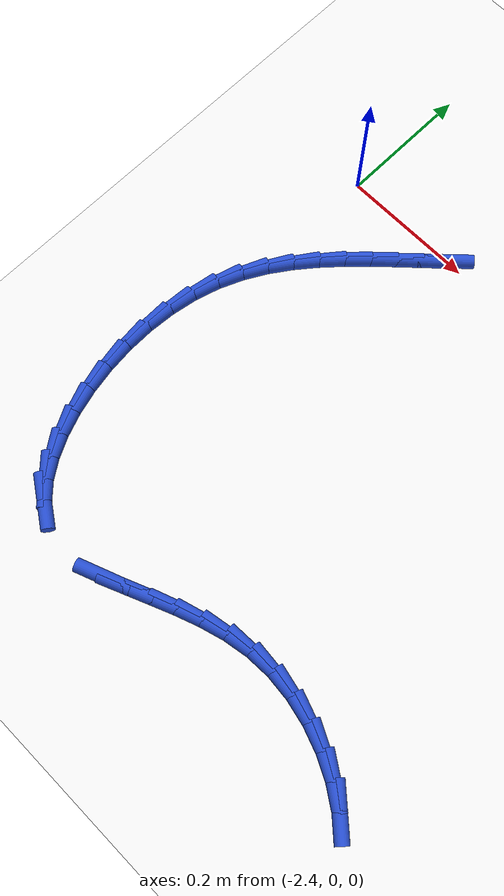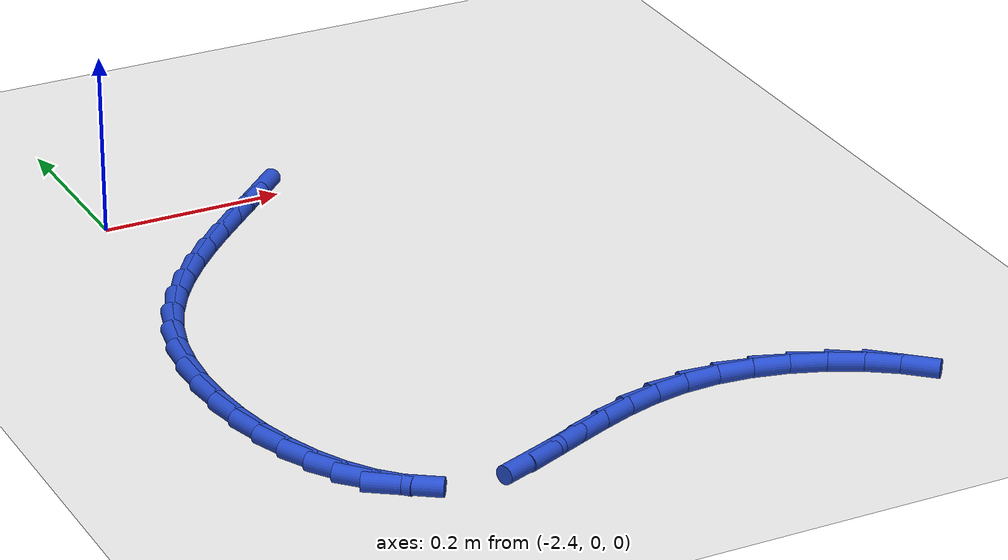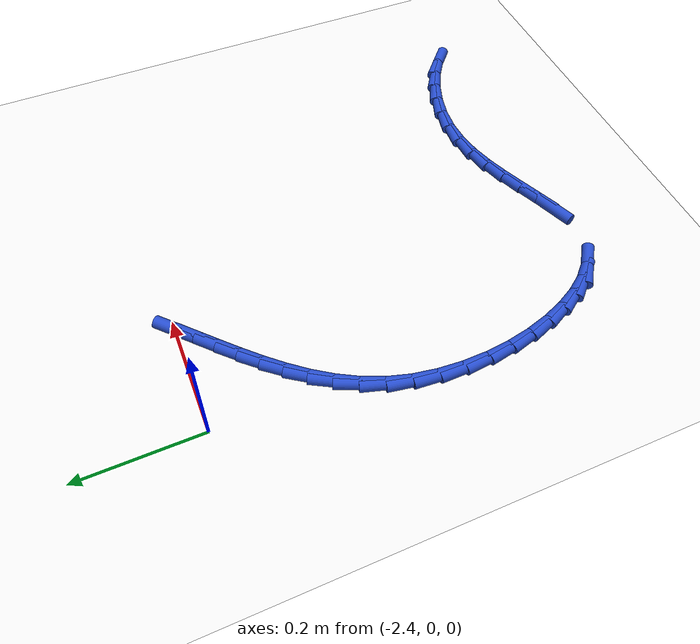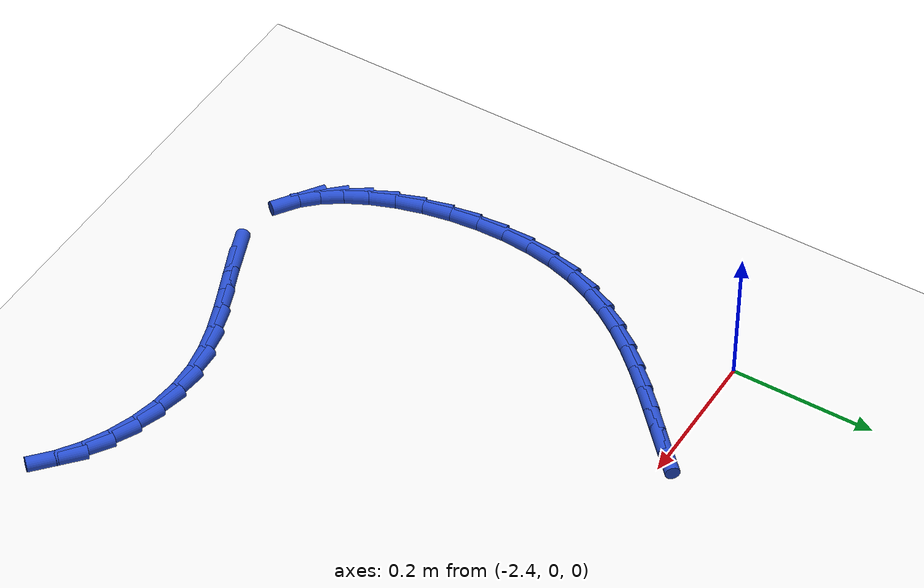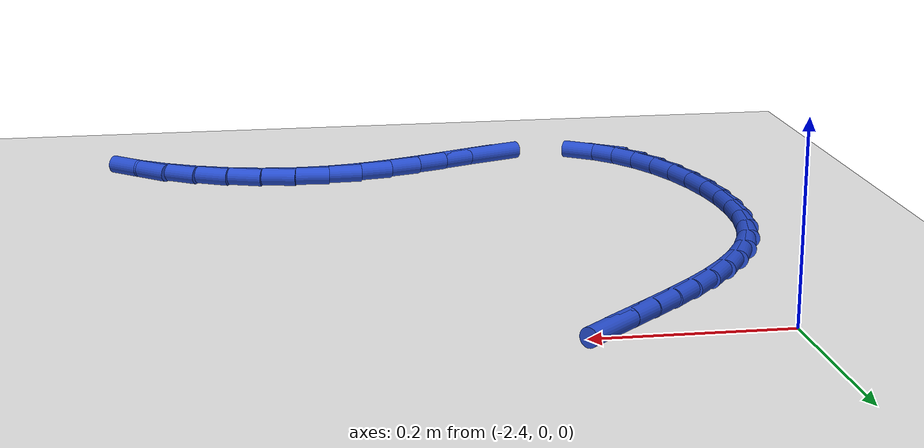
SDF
<sdf version="1.6">
 <world name="default">
  <model name="ground_plane">
   <static>1</static>
   <link name="link">
    <collision name="collision">
     <geometry><plane><normal>0 0 1</normal><size>100 100</size></plane></geometry>
     <surface><friction><ode><mu>100</mu><mu2>50</mu2></ode></friction></surface>
    </collision>
    <visual name="visual">
     <cast_shadows>0</cast_shadows>
     <geometry><plane><normal>0 0 1</normal><size>100 100</size></plane></geometry>
     <material>
      <script><uri>file://media/materials/scripts/gazebo.material</uri><name>Gazebo/WhiteGlow</name></script>
     </material>
    </visual>
   </link>
  </model>
  <model name="line">
   <link name="link_136">
    <pose>-2.224616573735574 -0.004468285898509745 0.01 0 1.57 0.7657718882771116</pose>
    <collision name="collision">
     <geometry><cylinder><radius>0.01</radius><length>0.08</length></cylinder></geometry>
    </collision>
    <visual name="visual">
     <material>
      <script><name>Gazebo/Blue</name><uri>file://media/materials/scripts/gazebo.material</uri></script>
     </material>
     <geometry><cylinder><radius>0.01</radius><length>0.08</length></cylinder></geometry>
    </visual>
   </link>
   <link name="link_137">
    <pose>-2.249879394273641 -0.02875844120913975 0.01 0 1.57 0.757967144704939</pose>
    <collision name="collision">
     <geometry><cylinder><radius>0.01</radius><length>0.08</length></cylinder></geometry>
    </collision>
    <visual name="visual">
     <material>
      <script><name>Gazebo/Blue</name><uri>file://media/materials/scripts/gazebo.material</uri></script>
     </material>
     <geometry><cylinder><radius>0.01</radius><length>0.08</length></cylinder></geometry>
    </visual>
   </link>
   <link name="link_138">
    <pose>-2.2759423455509067 -0.053429361538926 0.01 0 1.57 0.7670263152751041</pose>
    <collision name="collision">
     <geometry><cylinder><radius>0.01</radius><length>0.08</length></cylinder></geometry>
    </collision>
    <visual name="visual">
     <material>
      <script><name>Gazebo/Blue</name><uri>file://media/materials/scripts/gazebo.material</uri></script>
     </material>
     <geometry><cylinder><radius>0.01</radius><length>0.08</length></cylinder></geometry>
    </visual>
   </link>
   <link name="link_139">
    <pose>-2.302205493768837 -0.07874480900403454 0.01 0 1.57 0.7923157932198339</pose>
    <collision name="collision">
     <geometry><cylinder><radius>0.01</radius><length>0.08</length></cylinder></geometry>
    </collision>
    <visual name="visual">
     <material>
      <script><name>Gazebo/Blue</name><uri>file://media/materials/scripts/gazebo.material</uri></script>
     </material>
     <geometry><cylinder><radius>0.01</radius><length>0.08</length></cylinder></geometry>
    </visual>
   </link>
   <link name="link_140">
    <pose>-2.3280689051288976 -0.10496854572063352 0.01 0 1.57 0.8338117037802529</pose>
    <collision name="collision">
     <geometry><cylinder><radius>0.01</radius><length>0.08</length></cylinder></geometry>
    </collision>
    <visual name="visual">
     <material>
      <script><name>Gazebo/Blue</name><uri>file://media/materials/scripts/gazebo.material</uri></script>
     </material>
     <geometry><cylinder><radius>0.01</radius><length>0.08</length></cylinder></geometry>
    </visual>
   </link>
   <link name="link_141">
    <pose>-2.3529326458325555 -0.13236433380489135 0.01 0 1.57 0.8918639505430946</pose>
    <collision name="collision">
     <geometry><cylinder><radius>0.01</radius><length>0.08</length></cylinder></geometry>
    </collision>
    <visual name="visual">
     <material>
      <script><name>Gazebo/Blue</name><uri>file://media/materials/scripts/gazebo.material</uri></script>
     </material>
     <geometry><cylinder><radius>0.01</radius><length>0.08</length></cylinder></geometry>
    </visual>
   </link>
   <link name="link_142">
    <pose>-2.3761967820812755 -0.1611959353729738 0.01 0 1.57 0.9668558253836452</pose>
    <collision name="collision">
     <geometry><cylinder><radius>0.01</radius><length>0.08</length></cylinder></geometry>
    </collision>
    <visual name="visual">
     <material>
      <script><name>Gazebo/Blue</name><uri>file://media/materials/scripts/gazebo.material</uri></script>
     </material>
     <geometry><cylinder><radius>0.01</radius><length>0.08</length></cylinder></geometry>
    </visual>
   </link>
   <link name="link_143">
    <pose>-2.3972613800765252 -0.19172711254105015 0.01 0 1.57 1.058711731830014</pose>
    <collision name="collision">
     <geometry><cylinder><radius>0.01</radius><length>0.08</length></cylinder></geometry>
    </collision>
    <visual name="visual">
     <material>
      <script><name>Gazebo/Blue</name><uri>file://media/materials/scripts/gazebo.material</uri></script>
     </material>
     <geometry><cylinder><radius>0.01</radius><length>0.08</length></cylinder></geometry>
    </visual>
   </link>
   <link name="link_144">
    <pose>-2.4155265060197704 -0.224221627425286 0.01 0 1.57 1.1662688862633526</pose>
    <collision name="collision">
     <geometry><cylinder><radius>0.01</radius><length>0.08</length></cylinder></geometry>
    </collision>
    <visual name="visual">
     <material>
      <script><name>Gazebo/Blue</name><uri>file://media/materials/scripts/gazebo.material</uri></script>
     </material>
     <geometry><cylinder><radius>0.01</radius><length>0.08</length></cylinder></geometry>
    </visual>
   </link>
   <link name="link_145">
    <pose>-2.4303922261124766 -0.2589432421418509 0.01 0 1.57 1.2851183425668071</pose>
    <collision name="collision">
     <geometry><cylinder><radius>0.01</radius><length>0.08</length></cylinder></geometry>
    </collision>
    <visual name="visual">
     <material>
      <script><name>Gazebo/Blue</name><uri>file://media/materials/scripts/gazebo.material</uri></script>
     </material>
     <geometry><cylinder><radius>0.01</radius><length>0.08</length></cylinder></geometry>
    </visual>
   </link>
   <link name="link_146">
    <pose>-2.4413041919021583 -0.29609517485403386 0.01 0 1.57 1.397007992559037</pose>
    <collision name="collision">
     <geometry><cylinder><radius>0.01</radius><length>0.08</length></cylinder></geometry>
    </collision>
    <visual name="visual">
     <material>
      <script><name>Gazebo/Blue</name><uri>file://media/materials/scripts/gazebo.material</uri></script>
     </material>
     <geometry><cylinder><radius>0.01</radius><length>0.08</length></cylinder></geometry>
    </visual>
   </link>
   <link name="link_147">
    <pose>-2.448179075511036 -0.33525506006827915 0.01 0 1.57 1.4958299038583678</pose>
    <collision name="collision">
     <geometry><cylinder><radius>0.01</radius><length>0.08</length></cylinder></geometry>
    </collision>
    <visual name="visual">
     <material>
      <script><name>Gazebo/Blue</name><uri>file://media/materials/scripts/gazebo.material</uri></script>
     </material>
     <geometry><cylinder><radius>0.01</radius><length>0.08</length></cylinder></geometry>
    </visual>
   </link>
   <link name="link_148">
    <pose>-2.4512116148841923 -0.37563122053767417 0.01 0 1.57 -1.5558090678703074</pose>
    <collision name="collision">
     <geometry><cylinder><radius>0.01</radius><length>0.08</length></cylinder></geometry>
    </collision>
    <visual name="visual">
     <material>
      <script><name>Gazebo/Blue</name><uri>file://media/materials/scripts/gazebo.material</uri></script>
     </material>
     <geometry><cylinder><radius>0.01</radius><length>0.08</length></cylinder></geometry>
    </visual>
   </link>
   <link name="link_149">
    <pose>-2.450600149254381 -0.4164271959828267 0.01 0 1.57 -1.4707553933714161</pose>
    <collision name="collision">
     <geometry><cylinder><radius>0.01</radius><length>0.08</length></cylinder></geometry>
    </collision>
    <visual name="visual">
     <material>
      <script><name>Gazebo/Blue</name><uri>file://media/materials/scripts/gazebo.material</uri></script>
     </material>
     <geometry><cylinder><radius>0.01</radius><length>0.08</length></cylinder></geometry>
    </visual>
   </link>
   <link name="link_150">
    <pose>-2.446543017854353 -0.45684652612433924 0.01 0 1.57 -1.3867830574191868</pose>
    <collision name="collision">
     <geometry><cylinder><radius>0.01</radius><length>0.08</length></cylinder></geometry>
    </collision>
    <visual name="visual">
     <material>
      <script><name>Gazebo/Blue</name><uri>file://media/materials/scripts/gazebo.material</uri></script>
     </material>
     <geometry><cylinder><radius>0.01</radius><length>0.08</length></cylinder></geometry>
    </visual>
   </link>
   <link name="link_151">
    <pose>-2.439238559916862 -0.49609275068281833 0.01 0 1.57 -1.299878918457833</pose>
    <collision name="collision">
     <geometry><cylinder><radius>0.01</radius><length>0.08</length></cylinder></geometry>
    </collision>
    <visual name="visual">
     <material>
      <script><name>Gazebo/Blue</name><uri>file://media/materials/scripts/gazebo.material</uri></script>
     </material>
     <geometry><cylinder><radius>0.01</radius><length>0.08</length></cylinder></geometry>
    </visual>
   </link>
   <link name="link_152">
    <pose>-2.4288851146746584 -0.5333694093788699 0.01 0 1.57 -1.2053711252016053</pose>
    <collision name="collision">
     <geometry><cylinder><radius>0.01</radius><length>0.08</length></cylinder></geometry>
    </collision>
    <visual name="visual">
     <material>
      <script><name>Gazebo/Blue</name><uri>file://media/materials/scripts/gazebo.material</uri></script>
     </material>
     <geometry><cylinder><radius>0.01</radius><length>0.08</length></cylinder></geometry>
    </visual>
   </link>
   <link name="link_153">
    <pose>-2.4156810213604976 -0.5678800419330969 0.01 0 1.57 -1.097314543827557</pose>
    <collision name="collision">
     <geometry><cylinder><radius>0.01</radius><length>0.08</length></cylinder></geometry>
    </collision>
    <visual name="visual">
     <material>
      <script><name>Gazebo/Blue</name><uri>file://media/materials/scripts/gazebo.material</uri></script>
     </material>
     <geometry><cylinder><radius>0.01</radius><length>0.08</length></cylinder></geometry>
    </visual>
   </link>
   <link name="link_154">
    <pose>-2.3998246192071298 -0.5988281880661068 0.01 0 1.57 -0.9677356520368824</pose>
    <collision name="collision">
     <geometry><cylinder><radius>0.01</radius><length>0.08</length></cylinder></geometry>
    </collision>
    <visual name="visual">
     <material>
      <script><name>Gazebo/Blue</name><uri>file://media/materials/scripts/gazebo.material</uri></script>
     </material>
     <geometry><cylinder><radius>0.01</radius><length>0.08</length></cylinder></geometry>
    </visual>
   </link>
   <link name="link_155">
    <pose>-2.381514247447309 -0.6254173874985024 0.01 0 1.57 -0.8060569992295915</pose>
    <collision name="collision">
     <geometry><cylinder><radius>0.01</radius><length>0.08</length></cylinder></geometry>
    </collision>
    <visual name="visual">
     <material>
      <script><name>Gazebo/Blue</name><uri>file://media/materials/scripts/gazebo.material</uri></script>
     </material>
     <geometry><cylinder><radius>0.01</radius><length>0.08</length></cylinder></geometry>
    </visual>
   </link>
   <link name="link_156">
    <pose>-2.360948245313787 -0.6468511799508907 0.01 0 1.57 -0.6001354066374069</pose>
    <collision name="collision">
     <geometry><cylinder><radius>0.01</radius><length>0.08</length></cylinder></geometry>
    </collision>
    <visual name="visual">
     <material>
      <script><name>Gazebo/Blue</name><uri>file://media/materials/scripts/gazebo.material</uri></script>
     </material>
     <geometry><cylinder><radius>0.01</radius><length>0.08</length></cylinder></geometry>
    </visual>
   </link>
   <link name="link_161">
    <pose>-2.23060096526564 -0.6597055817068898 0.01 0 1.57 0.36979817246245306</pose>
    <collision name="collision">
     <geometry><cylinder><radius>0.01</radius><length>0.08</length></cylinder></geometry>
    </collision>
    <visual name="visual">
     <material>
      <script><name>Gazebo/Blue</name><uri>file://media/materials/scripts/gazebo.material</uri></script>
     </material>
     <geometry><cylinder><radius>0.01</radius><length>0.08</length></cylinder></geometry>
    </visual>
   </link>
   <link name="link_162">
    <pose>-2.199846050556376 -0.6477840236771483 0.01 0 1.57 0.4019765180917842</pose>
    <collision name="collision">
     <geometry><cylinder><radius>0.01</radius><length>0.08</length></cylinder></geometry>
    </collision>
    <visual name="visual">
     <material>
      <script><name>Gazebo/Blue</name><uri>file://media/materials/scripts/gazebo.material</uri></script>
     </material>
     <geometry><cylinder><radius>0.01</radius><length>0.08</length></cylinder></geometry>
    </visual>
   </link>
   <link name="link_163">
    <pose>-2.167708329932783 -0.6341214752239577 0.01 0 1.57 0.3966032068881346</pose>
    <collision name="collision">
     <geometry><cylinder><radius>0.01</radius><length>0.08</length></cylinder></geometry>
    </collision>
    <visual name="visual">
     <material>
      <script><name>Gazebo/Blue</name><uri>file://media/materials/scripts/gazebo.material</uri></script>
     </material>
     <geometry><cylinder><radius>0.01</radius><length>0.08</length></cylinder></geometry>
    </visual>
   </link>
   <link name="link_164">
    <pose>-2.1342604222439543 -0.6201136600079894 0.01 0 1.57 0.357513981258603</pose>
    <collision name="collision">
     <geometry><cylinder><radius>0.01</radius><length>0.08</length></cylinder></geometry>
    </collision>
    <visual name="visual">
     <material>
      <script><name>Gazebo/Blue</name><uri>file://media/materials/scripts/gazebo.material</uri></script>
     </material>
     <geometry><cylinder><radius>0.01</radius><length>0.08</length></cylinder></geometry>
    </visual>
   </link>
   <link name="link_165">
    <pose>-2.09957494633898 -0.6071563016899129 0.01 0 1.57 0.2852023583718637</pose>
    <collision name="collision">
     <geometry><cylinder><radius>0.01</radius><length>0.08</length></cylinder></geometry>
    </collision>
    <visual name="visual">
     <material>
      <script><name>Gazebo/Blue</name><uri>file://media/materials/scripts/gazebo.material</uri></script>
     </material>
     <geometry><cylinder><radius>0.01</radius><length>0.08</length></cylinder></geometry>
    </visual>
   </link>
   <link name="link_166">
    <pose>-2.063724521066954 -0.5966451239303997 0.01 0 1.57 0.17860620097574</pose>
    <collision name="collision">
     <geometry><cylinder><radius>0.01</radius><length>0.08</length></cylinder></geometry>
    </collision>
    <visual name="visual">
     <material>
      <script><name>Gazebo/Blue</name><uri>file://media/materials/scripts/gazebo.material</uri></script>
     </material>
     <geometry><cylinder><radius>0.01</radius><length>0.08</length></cylinder></geometry>
    </visual>
   </link>
   <link name="link_167">
    <pose>-2.0267817652769664 -0.5899758503901196 0.01 0 1.57 0.04099319294804706</pose>
    <collision name="collision">
     <geometry><cylinder><radius>0.01</radius><length>0.08</length></cylinder></geometry>
    </collision>
    <visual name="visual">
     <material>
      <script><name>Gazebo/Blue</name><uri>file://media/materials/scripts/gazebo.material</uri></script>
     </material>
     <geometry><cylinder><radius>0.01</radius><length>0.08</length></cylinder></geometry>
    </visual>
   </link>
   <link name="link_168">
    <pose>-1.9888747574010586 -0.5884210500874203 0.01 0 1.57 -0.096989445334978</pose>
    <collision name="collision">
     <geometry><cylinder><radius>0.01</radius><length>0.08</length></cylinder></geometry>
    </collision>
    <visual name="visual">
     <material>
      <script><name>Gazebo/Blue</name><uri>file://media/materials/scripts/gazebo.material</uri></script>
     </material>
     <geometry><cylinder><radius>0.01</radius><length>0.08</length></cylinder></geometry>
    </visual>
   </link>
   <link name="link_169">
    <pose>-1.9506320809752655 -0.5921418605479029 0.01 0 1.57 -0.2235642642575215</pose>
    <collision name="collision">
     <geometry><cylinder><radius>0.01</radius><length>0.08</length></cylinder></geometry>
    </collision>
    <visual name="visual">
     <material>
      <script><name>Gazebo/Blue</name><uri>file://media/materials/scripts/gazebo.material</uri></script>
     </material>
     <geometry><cylinder><radius>0.01</radius><length>0.08</length></cylinder></geometry>
    </visual>
   </link>
   <link name="link_170">
    <pose>-1.912947771935829 -0.6007099504684692 0.01 0 1.57 -0.3440647300026908</pose>
    <collision name="collision">
     <geometry><cylinder><radius>0.01</radius><length>0.08</length></cylinder></geometry>
    </collision>
    <visual name="visual">
     <material>
      <script><name>Gazebo/Blue</name><uri>file://media/materials/scripts/gazebo.material</uri></script>
     </material>
     <geometry><cylinder><radius>0.01</radius><length>0.08</length></cylinder></geometry>
    </visual>
   </link>
   <link name="link_171">
    <pose>-1.8767183020266847 -0.6136915795434703 0.01 0 1.57 -0.46417520576326626</pose>
    <collision name="collision">
     <geometry><cylinder><radius>0.01</radius><length>0.08</length></cylinder></geometry>
    </collision>
    <visual name="visual">
     <material>
      <script><name>Gazebo/Blue</name><uri>file://media/materials/scripts/gazebo.material</uri></script>
     </material>
     <geometry><cylinder><radius>0.01</radius><length>0.08</length></cylinder></geometry>
    </visual>
   </link>
   <link name="link_172">
    <pose>-1.8428401429917665 -0.6306530074672576 0.01 0 1.57 -0.5899717097414883</pose>
    <collision name="collision">
     <geometry><cylinder><radius>0.01</radius><length>0.08</length></cylinder></geometry>
    </collision>
    <visual name="visual">
     <material>
      <script><name>Gazebo/Blue</name><uri>file://media/materials/scripts/gazebo.material</uri></script>
     </material>
     <geometry><cylinder><radius>0.01</radius><length>0.08</length></cylinder></geometry>
    </visual>
   </link>
   <link name="link_173">
    <pose>-1.8122097665750139 -0.6511604939341813 0.01 0 1.57 -0.7282552852472344</pose>
    <collision name="collision">
     <geometry><cylinder><radius>0.01</radius><length>0.08</length></cylinder></geometry>
    </collision>
    <visual name="visual">
     <material>
      <script><name>Gazebo/Blue</name><uri>file://media/materials/scripts/gazebo.material</uri></script>
     </material>
     <geometry><cylinder><radius>0.01</radius><length>0.08</length></cylinder></geometry>
    </visual>
   </link>
  </model>
 </world>
</sdf>
